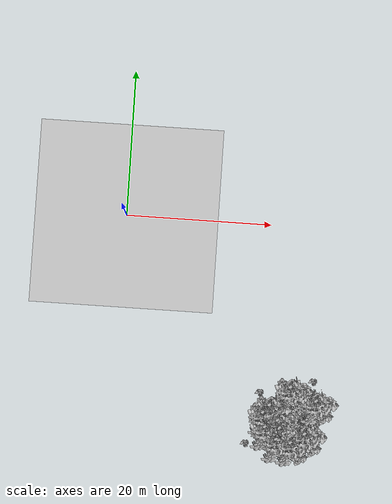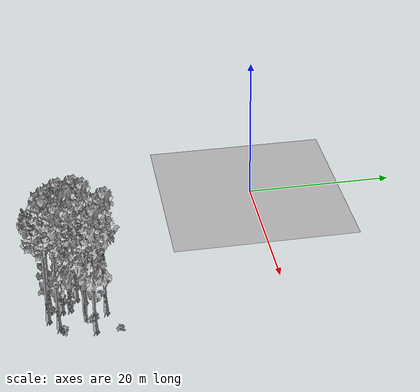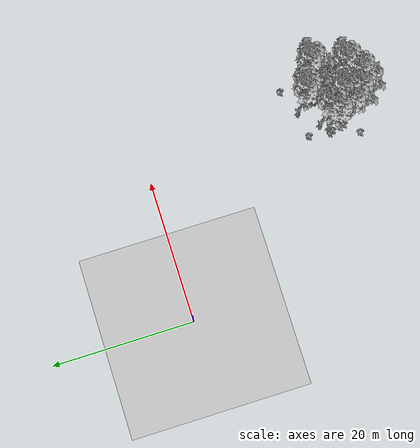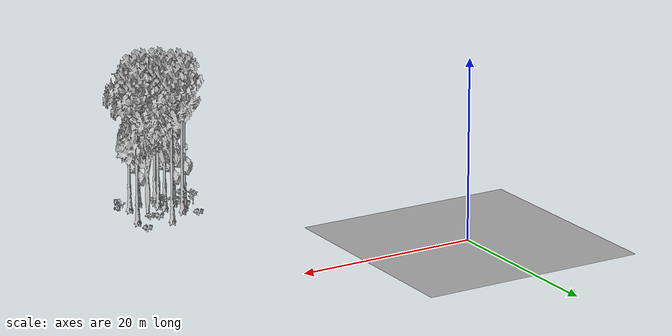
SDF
<sdf version="1.7">
 <world name="default">
  <model name="ground_plane">
   <static>1</static>
   <link name="link">
    <collision name="collision">
     <pose>-50 0 0 0 -0 0</pose>
     <geometry><plane><normal>0 0 1</normal><size>80 80</size></plane></geometry>
     <surface><contact><ode><min_depth>0.01</min_depth><max_vel>0</max_vel></ode></contact></surface>
    </collision>
    <visual name="grass">
     <cast_shadows>0</cast_shadows>
     <geometry>
      <mesh>
       <scale>0.46714285714285714 0.46714285714285714 0.1</scale>
       <uri>file://grass_plane/meshes/grass_plane.dae</uri>
      </mesh>
     </geometry>
    </visual>
   </link>
  </model>
  <model name="Tree 14">
   <static>1</static>
   <pose>21.889454777464486 -29.216669163732227 0 1.57079 -0 0</pose>
   <link name="link">
    <collision name="collision">
     <geometry><mesh><scale>3.5 5 3.5</scale><uri>model://tree_9/meshes/tree_9.obj</uri></mesh></geometry>
    </collision>
    <visual name="visual">
     <geometry><mesh><scale>3.5 5 3.5</scale><uri>model://tree_9/meshes/tree_9.obj</uri></mesh></geometry>
    </visual>
   </link>
  </model>
  <model name="Tree 21">
   <static>1</static>
   <pose>26.68829349461484 -24.06690457907482 0 1.57079 -0 0</pose>
   <link name="link">
    <collision name="collision">
     <geometry><mesh><scale>3.5 5 3.5</scale><uri>model://tree_9/meshes/tree_9.obj</uri></mesh></geometry>
    </collision>
    <visual name="visual">
     <geometry><mesh><scale>3.5 5 3.5</scale><uri>model://tree_9/meshes/tree_9.obj</uri></mesh></geometry>
    </visual>
   </link>
  </model>
  <model name="Tree 103">
   <static>1</static>
   <pose>20.358860649257387 -27.718537807183992 0 1.57079 -0 0</pose>
   <link name="link">
    <collision name="collision">
     <geometry><mesh><scale>3.5 5 3.5</scale><uri>model://tree_9/meshes/tree_9.obj</uri></mesh></geometry>
    </collision>
    <visual name="visual">
     <geometry><mesh><scale>3.5 5 3.5</scale><uri>model://tree_9/meshes/tree_9.obj</uri></mesh></geometry>
    </visual>
   </link>
  </model>
  <model name="Tree 266">
   <static>1</static>
   <pose>25.468096148139765 -28.331725628397393 0 1.57079 -0 0</pose>
   <link name="link">
    <collision name="collision">
     <geometry><mesh><scale>3.5 5 3.5</scale><uri>model://tree_9/meshes/tree_9.obj</uri></mesh></geometry>
    </collision>
    <visual name="visual">
     <geometry><mesh><scale>3.5 5 3.5</scale><uri>model://tree_9/meshes/tree_9.obj</uri></mesh></geometry>
    </visual>
   </link>
  </model>
  <model name="Tree 285">
   <static>1</static>
   <pose>20.754364192577718 -24.913984964345673 0 1.57079 -0 0</pose>
   <link name="link">
    <collision name="collision">
     <geometry><mesh><scale>3.5 5 3.5</scale><uri>model://tree_9/meshes/tree_9.obj</uri></mesh></geometry>
    </collision>
    <visual name="visual">
     <geometry><mesh><scale>3.5 5 3.5</scale><uri>model://tree_9/meshes/tree_9.obj</uri></mesh></geometry>
    </visual>
   </link>
  </model>
  <model name="Tree 454">
   <static>1</static>
   <pose>22.211506472587438 -27.796185357270147 0 1.57079 -0 0</pose>
   <link name="link">
    <collision name="collision">
     <geometry><mesh><scale>3.5 5 3.5</scale><uri>model://tree_9/meshes/tree_9.obj</uri></mesh></geometry>
    </collision>
    <visual name="visual">
     <geometry><mesh><scale>3.5 5 3.5</scale><uri>model://tree_9/meshes/tree_9.obj</uri></mesh></geometry>
    </visual>
   </link>
  </model>
  <model name="Tree 489">
   <static>1</static>
   <pose>23.74093065752993 -29.547992968852874 0 1.57079 -0 0</pose>
   <link name="link">
    <collision name="collision">
     <geometry><mesh><scale>3.5 5 3.5</scale><uri>model://tree_9/meshes/tree_9.obj</uri></mesh></geometry>
    </collision>
    <visual name="visual">
     <geometry><mesh><scale>3.5 5 3.5</scale><uri>model://tree_9/meshes/tree_9.obj</uri></mesh></geometry>
    </visual>
   </link>
  </model>
  <model name="Tree 504">
   <static>1</static>
   <pose>21.934778376356284 -26.804360058335625 0 1.57079 -0 0</pose>
   <link name="link">
    <collision name="collision">
     <geometry><mesh><scale>3.5 5 3.5</scale><uri>model://tree_9/meshes/tree_9.obj</uri></mesh></geometry>
    </collision>
    <visual name="visual">
     <geometry><mesh><scale>3.5 5 3.5</scale><uri>model://tree_9/meshes/tree_9.obj</uri></mesh></geometry>
    </visual>
   </link>
  </model>
  <model name="Tree 543">
   <static>1</static>
   <pose>23.29115472973008 -22.499571491193677 0 1.57079 -0 0</pose>
   <link name="link">
    <collision name="collision">
     <geometry><mesh><scale>3.5 5 3.5</scale><uri>model://tree_9/meshes/tree_9.obj</uri></mesh></geometry>
    </collision>
    <visual name="visual">
     <geometry><mesh><scale>3.5 5 3.5</scale><uri>model://tree_9/meshes/tree_9.obj</uri></mesh></geometry>
    </visual>
   </link>
  </model>
  <model name="Tree 577">
   <static>1</static>
   <pose>19.971620140340825 -25.9050360132063 0 1.57079 -0 0</pose>
   <link name="link">
    <collision name="collision">
     <geometry><mesh><scale>3.5 5 3.5</scale><uri>model://tree_9/meshes/tree_9.obj</uri></mesh></geometry>
    </collision>
    <visual name="visual">
     <geometry><mesh><scale>3.5 5 3.5</scale><uri>model://tree_9/meshes/tree_9.obj</uri></mesh></geometry>
    </visual>
   </link>
  </model>
  <model name="Tree 612">
   <static>1</static>
   <pose>24.838254010484448 -25.10527210001979 0 1.57079 -0 0</pose>
   <link name="link">
    <collision name="collision">
     <geometry><mesh><scale>3.5 5 3.5</scale><uri>model://tree_2/meshes/tree_2.obj</uri></mesh></geometry>
    </collision>
    <visual name="visual">
     <geometry><mesh><scale>3.5 5 3.5</scale><uri>model://tree_2/meshes/tree_2.obj</uri></mesh></geometry>
    </visual>
   </link>
  </model>
  <model name="Bush 189">
   <static>1</static>
   <pose>19.08484671327929 -25.651398181912537 0 1.57079 -0 0</pose>
   <link name="link">
    <collision name="collision">
     <geometry><mesh><scale>2 2 2</scale><uri>model://bush_5/meshes/bush_5.obj</uri></mesh></geometry>
     <surface><contact><collide_without_contact>false</collide_without_contact></contact></surface>
    </collision>
    <visual name="visual">
     <geometry><mesh><scale>2 2 2</scale><uri>model://bush_5/meshes/bush_5.obj</uri></mesh></geometry>
    </visual>
   </link>
  </model>
  <model name="Bush 227">
   <static>1</static>
   <pose>27.044641790000767 -27.866547994422007 0 1.57079 -0 0</pose>
   <link name="link">
    <collision name="collision">
     <geometry><mesh><scale>2 2 2</scale><uri>model://bush_4/meshes/bush_4.obj</uri></mesh></geometry>
     <surface><contact><collide_without_contact>false</collide_without_contact></contact></surface>
    </collision>
    <visual name="visual">
     <geometry><mesh><scale>2 2 2</scale><uri>model://bush_4/meshes/bush_4.obj</uri></mesh></geometry>
    </visual>
   </link>
  </model>
  <model name="Bush 296">
   <static>1</static>
   <pose>18.20809578895563 -30.039849089865 0 1.57079 -0 0</pose>
   <link name="link">
    <collision name="collision">
     <geometry><mesh><scale>2 2 2</scale><uri>model://bush_2/meshes/bush_2.obj</uri></mesh></geometry>
     <surface><contact><collide_without_contact>false</collide_without_contact></contact></surface>
    </collision>
    <visual name="visual">
     <geometry><mesh><scale>2 2 2</scale><uri>model://bush_2/meshes/bush_2.obj</uri></mesh></geometry>
    </visual>
   </link>
  </model>
  <model name="Bush 377">
   <static>1</static>
   <pose>19.613172919908777 -26.404392487476763 0 1.57079 -0 0</pose>
   <link name="link">
    <collision name="collision">
     <geometry><mesh><scale>2 2 2</scale><uri>model://bush_2/meshes/bush_2.obj</uri></mesh></geometry>
     <surface><contact><collide_without_contact>false</collide_without_contact></contact></surface>
    </collision>
    <visual name="visual">
     <geometry><mesh><scale>2 2 2</scale><uri>model://bush_2/meshes/bush_2.obj</uri></mesh></geometry>
    </visual>
   </link>
  </model>
  <model name="Bush 398">
   <static>1</static>
   <pose>19.742865877455394 -27.5971547670163 0 1.57079 -0 0</pose>
   <link name="link">
    <collision name="collision">
     <geometry><mesh><scale>2 2 2</scale><uri>model://bush_2/meshes/bush_2.obj</uri></mesh></geometry>
     <surface><contact><collide_without_contact>false</collide_without_contact></contact></surface>
    </collision>
    <visual name="visual">
     <geometry><mesh><scale>2 2 2</scale><uri>model://bush_2/meshes/bush_2.obj</uri></mesh></geometry>
    </visual>
   </link>
  </model>
  <model name="Bush 436">
   <static>1</static>
   <pose>19.795364478200625 -23.020800053461716 0 1.57079 -0 0</pose>
   <link name="link">
    <collision name="collision">
     <geometry><mesh><scale>2 2 2</scale><uri>model://bush_2/meshes/bush_2.obj</uri></mesh></geometry>
     <surface><contact><collide_without_contact>false</collide_without_contact></contact></surface>
    </collision>
    <visual name="visual">
     <geometry><mesh><scale>2 2 2</scale><uri>model://bush_2/meshes/bush_2.obj</uri></mesh></geometry>
    </visual>
   </link>
  </model>
  <model name="Bush 440">
   <static>1</static>
   <pose>22.03546484171749 -29.059116542958854 0 1.57079 -0 0</pose>
   <link name="link">
    <collision name="collision">
     <geometry><mesh><scale>2 2 2</scale><uri>model://bush_2/meshes/bush_2.obj</uri></mesh></geometry>
     <surface><contact><collide_without_contact>false</collide_without_contact></contact></surface>
    </collision>
    <visual name="visual">
     <geometry><mesh><scale>2 2 2</scale><uri>model://bush_2/meshes/bush_2.obj</uri></mesh></geometry>
    </visual>
   </link>
  </model>
  <model name="Bush 452">
   <static>1</static>
   <pose>24.13850873529598 -23.97965286904988 0 1.57079 -0 0</pose>
   <link name="link">
    <collision name="collision">
     <geometry><mesh><scale>2 2 2</scale><uri>model://bush_2/meshes/bush_2.obj</uri></mesh></geometry>
     <surface><contact><collide_without_contact>false</collide_without_contact></contact></surface>
    </collision>
    <visual name="visual">
     <geometry><mesh><scale>2 2 2</scale><uri>model://bush_2/meshes/bush_2.obj</uri></mesh></geometry>
    </visual>
   </link>
  </model>
  <model name="Bush 455">
   <static>1</static>
   <pose>24.911743699796745 -24.52112983350295 0 1.57079 -0 0</pose>
   <link name="link">
    <collision name="collision">
     <geometry><mesh><scale>2 2 2</scale><uri>model://bush_2/meshes/bush_2.obj</uri></mesh></geometry>
     <surface><contact><collide_without_contact>false</collide_without_contact></contact></surface>
    </collision>
    <visual name="visual">
     <geometry><mesh><scale>2 2 2</scale><uri>model://bush_2/meshes/bush_2.obj</uri></mesh></geometry>
    </visual>
   </link>
  </model>
  <model name="Bush 479">
   <static>1</static>
   <pose>19.97259193387523 -28.212128533148366 0 1.57079 -0 0</pose>
   <link name="link">
    <collision name="collision">
     <geometry><mesh><scale>2 2 2</scale><uri>model://bush_2/meshes/bush_2.obj</uri></mesh></geometry>
     <surface><contact><collide_without_contact>false</collide_without_contact></contact></surface>
    </collision>
    <visual name="visual">
     <geometry><mesh><scale>2 2 2</scale><uri>model://bush_2/meshes/bush_2.obj</uri></mesh></geometry>
    </visual>
   </link>
  </model>
  <model name="Bush 563">
   <static>1</static>
   <pose>22.097300272236723 -26.849952073449607 0 1.57079 -0 0</pose>
   <link name="link">
    <collision name="collision">
     <geometry><mesh><scale>2 2 2</scale><uri>model://bush_4/meshes/bush_4.obj</uri></mesh></geometry>
     <surface><contact><collide_without_contact>false</collide_without_contact></contact></surface>
    </collision>
    <visual name="visual">
     <geometry><mesh><scale>2 2 2</scale><uri>model://bush_4/meshes/bush_4.obj</uri></mesh></geometry>
    </visual>
   </link>
  </model>
  <model name="Bush 607">
   <static>1</static>
   <pose>27.01294579888682 -21.108059450261408 0 1.57079 -0 0</pose>
   <link name="link">
    <collision name="collision">
     <geometry><mesh><scale>2 2 2</scale><uri>model://bush_2/meshes/bush_2.obj</uri></mesh></geometry>
     <surface><contact><collide_without_contact>false</collide_without_contact></contact></surface>
    </collision>
    <visual name="visual">
     <geometry><mesh><scale>2 2 2</scale><uri>model://bush_2/meshes/bush_2.obj</uri></mesh></geometry>
    </visual>
   </link>
  </model>
 </world>
</sdf>
